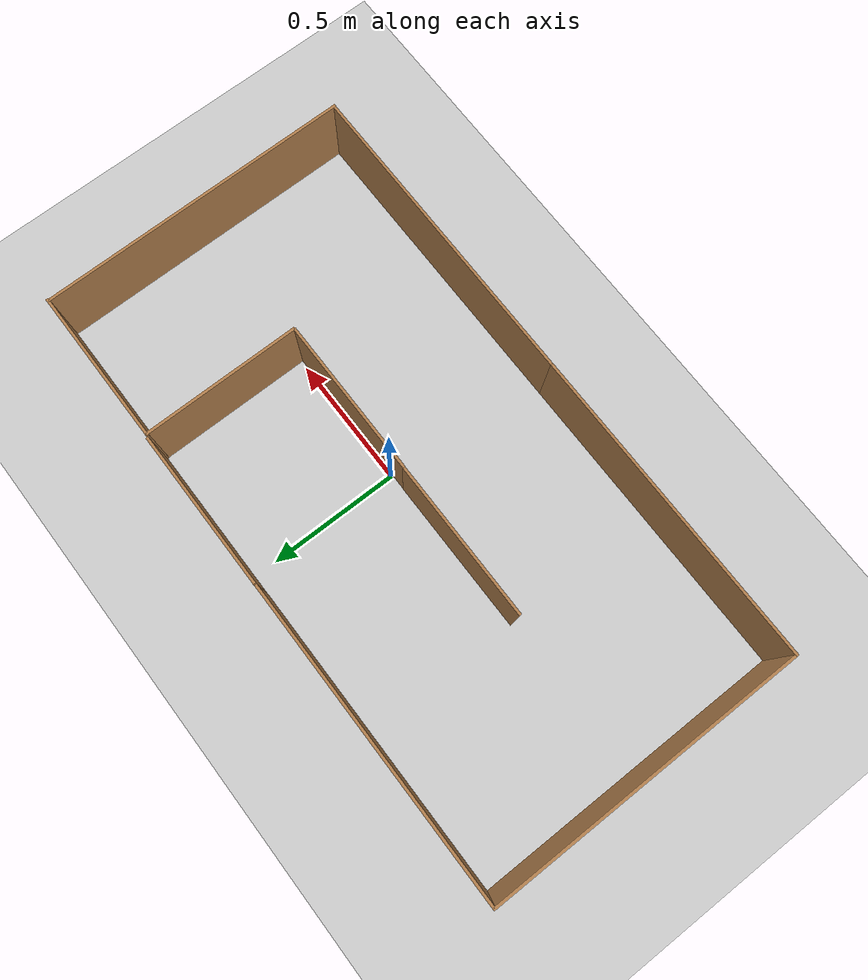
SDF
<sdf version="1.7">
 <world name="default">
  <light name="sun" type="directional">
   <pose>0 0 10 0 -0 0</pose>
   <diffuse>0.8 0.8 0.8 1</diffuse>
   <specular>0.2 0.2 0.2 1</specular>
   <attenuation>
    <range>1000</range>
    <constant>0.9</constant>
    <linear>0.01</linear>
    <quadratic>0.001</quadratic>
   </attenuation>
   <direction>-0.5 0.1 -0.9</direction>
   <spot><inner_angle>0</inner_angle><outer_angle>0</outer_angle><falloff>0</falloff></spot>
  </light>
  <model name="ground_plane">
   <pose>0 0 0 0 0 -1.56637</pose>
   <static>1</static>
   <link name="link">
    <collision name="collision">
     <geometry><plane><normal>0 0 1</normal><size>100 100</size></plane></geometry>
     <surface>
      <contact><collide_bitmask>65535</collide_bitmask></contact>
      <friction><ode><mu>100</mu><mu2>50</mu2></ode></friction>
     </surface>
    </collision>
    <visual name="visual">
     <cast_shadows>0</cast_shadows>
     <geometry><plane><normal>0 0 1</normal><size>100 100</size></plane></geometry>
     <material>
      <script><uri>file://media/materials/scripts/gazebo.material</uri><name>Gazebo/Grey</name></script>
     </material>
    </visual>
   </link>
  </model>
  <gravity>0 0 -9.8</gravity>
  <magnetic_field>6e-06 2.3e-05 -4.2e-05</magnetic_field>
  <atmosphere type="adiabatic"/>
  <physics type="ode">
   <max_step_size>0.001</max_step_size>
   <real_time_factor>1</real_time_factor>
   <real_time_update_rate>1000</real_time_update_rate>
  </physics>
  <scene><ambient>0.4 0.4 0.4 1</ambient><background>0.7 0.7 0.7 1</background><shadows>1</shadows></scene>
  <spherical_coordinates>
   <surface_model>EARTH_WGS84</surface_model>
   <latitude_deg>0</latitude_deg>
   <longitude_deg>0</longitude_deg>
   <elevation>0</elevation>
   <heading_deg>0</heading_deg>
  </spherical_coordinates>
  <model name="pared120">
   <pose>-0.68 0.6673 0 0 -0 0</pose>
   <link name="Wall_10">
    <collision name="Wall_10_Collision">
     <geometry><box><size>1.2 0.01 0.3</size></box></geometry>
     <pose>0 0 0.15 0 -0 0</pose>
    </collision>
    <visual name="Wall_10_Visual">
     <pose>0 0 0.15 0 -0 0</pose>
     <geometry><box><size>1.2 0.01 0.3</size></box></geometry>
     <material>
      <script><uri>file://media/materials/scripts/gazebo.material</uri><name>Gazebo/Wood</name></script>
      <ambient>1 1 1 1</ambient>
     </material>
     <meta><layer>0</layer></meta>
    </visual>
    <pose>0 -1.278 0 0 -0 0</pose>
   </link>
   <static>1</static>
  </model>
  <model name="pared120_0">
   <pose>-3e-06 1e-06 0 0 0 -1.56637</pose>
   <link name="Wall_10">
    <collision name="Wall_10_Collision">
     <geometry><box><size>1.2 0.01 0.3</size></box></geometry>
     <pose>0 0 0.15 0 -0 0</pose>
    </collision>
    <visual name="Wall_10_Visual">
     <pose>0 0 0.15 0 -0 0</pose>
     <geometry><box><size>1.2 0.01 0.3</size></box></geometry>
     <material>
      <script><uri>file://media/materials/scripts/gazebo.material</uri><name>Gazebo/Wood</name></script>
      <ambient>1 1 1 1</ambient>
     </material>
     <meta><layer>0</layer></meta>
    </visual>
    <pose>0 -1.278 0 0 -0 0</pose>
   </link>
   <static>1</static>
  </model>
  <model name="pared120_1">
   <pose>-0.68 1.8673 0 0 -0 0</pose>
   <link name="Wall_10">
    <collision name="Wall_10_Collision">
     <geometry><box><size>1.2 0.01 0.3</size></box></geometry>
     <pose>0 0 0.15 0 -0 0</pose>
    </collision>
    <visual name="Wall_10_Visual">
     <pose>0 0 0.15 0 -0 0</pose>
     <geometry><box><size>1.2 0.01 0.3</size></box></geometry>
     <material>
      <script><uri>file://media/materials/scripts/gazebo.material</uri><name>Gazebo/Wood</name></script>
      <ambient>1 1 1 1</ambient>
     </material>
     <meta><layer>0</layer></meta>
    </visual>
    <pose>0 -1.278 0 0 -0 0</pose>
   </link>
   <static>1</static>
  </model>
  <model name="pared120_2">
   <pose>0.52 0.6673 0 0 -0 0</pose>
   <link name="Wall_10">
    <collision name="Wall_10_Collision">
     <geometry><box><size>1.2 0.01 0.3</size></box></geometry>
     <pose>0 0 0.15 0 -0 0</pose>
    </collision>
    <visual name="Wall_10_Visual">
     <pose>0 0 0.15 0 -0 0</pose>
     <geometry><box><size>1.2 0.01 0.3</size></box></geometry>
     <material>
      <script><uri>file://media/materials/scripts/gazebo.material</uri><name>Gazebo/Wood</name></script>
      <ambient>1 1 1 1</ambient>
     </material>
     <meta><layer>0</layer></meta>
    </visual>
    <pose>0 -1.278 0 0 -0 0</pose>
   </link>
   <static>1</static>
  </model>
  <model name="pared120_3">
   <pose>2.39988 -0.010543 0 0 0 -1.56637</pose>
   <link name="Wall_10">
    <collision name="Wall_10_Collision">
     <geometry><box><size>1.2 0.01 0.3</size></box></geometry>
     <pose>0 0 0.15 0 -0 0</pose>
    </collision>
    <visual name="Wall_10_Visual">
     <pose>0 0 0.15 0 -0 0</pose>
     <geometry><box><size>1.2 0.01 0.3</size></box></geometry>
     <material>
      <script><uri>file://media/materials/scripts/gazebo.material</uri><name>Gazebo/Wood</name></script>
      <ambient>1 1 1 1</ambient>
     </material>
     <meta><layer>0</layer></meta>
    </visual>
    <pose>0 -1.278 0 0 -0 0</pose>
   </link>
   <static>1</static>
  </model>
  <model name="pared60_0">
   <pose>-0.839667 1.1544 0 0 -0 0</pose>
   <link name="Wall_14">
    <collision name="Wall_14_Collision">
     <geometry><box><size>0.6 0.01 0.3</size></box></geometry>
     <pose>0 0 0.15 0 -0 0</pose>
    </collision>
    <visual name="Wall_14_Visual">
     <pose>0 0 0.15 0 -0 0</pose>
     <geometry><box><size>0.6 0.01 0.3</size></box></geometry>
     <material>
      <script><uri>file://media/materials/scripts/gazebo.material</uri><name>Gazebo/Wood</name></script>
      <ambient>1 1 1 1</ambient>
     </material>
     <meta><layer>0</layer></meta>
    </visual>
    <pose>1.07729 -1.16568 0 0 -0 0</pose>
   </link>
   <static>1</static>
  </model>
  <model name="pared60">
   <pose>-0.25 1.75 0 0 -0 0</pose>
   <link name="Wall_14">
    <collision name="Wall_14_Collision">
     <geometry><box><size>0.6 0.01 0.3</size></box></geometry>
     <pose>0 0 0.15 0 -0 0</pose>
    </collision>
    <visual name="Wall_14_Visual">
     <pose>0 0 0.15 0 -0 0</pose>
     <geometry><box><size>0.6 0.01 0.3</size></box></geometry>
     <material>
      <script><uri>file://media/materials/scripts/gazebo.material</uri><name>Gazebo/Wood</name></script>
      <ambient>1 1 1 1</ambient>
     </material>
     <meta><layer>0</layer></meta>
    </visual>
    <pose>1.07729 -1.16568 0 0 -0 0</pose>
   </link>
   <static>1</static>
  </model>
  <model name="pared60_1">
   <pose>-0.852729 1.75555 0 0 -0 0</pose>
   <link name="Wall_14">
    <collision name="Wall_14_Collision">
     <geometry><box><size>0.6 0.01 0.3</size></box></geometry>
     <pose>0 0 0.15 0 -0 0</pose>
    </collision>
    <visual name="Wall_14_Visual">
     <pose>0 0 0.15 0 -0 0</pose>
     <geometry><box><size>0.6 0.01 0.3</size></box></geometry>
     <material>
      <script><uri>file://media/materials/scripts/gazebo.material</uri><name>Gazebo/Wood</name></script>
      <ambient>1 1 1 1</ambient>
     </material>
     <meta><layer>0</layer></meta>
    </visual>
    <pose>1.07729 -1.16568 0 0 -0 0</pose>
   </link>
   <static>1</static>
  </model>
  <model name="pared60_2">
   <pose>1.69779 1.36926 0 0 0 -1.56637</pose>
   <link name="Wall_14">
    <collision name="Wall_14_Collision">
     <geometry><box><size>0.6 0.01 0.3</size></box></geometry>
     <pose>0 0 0.15 0 -0 0</pose>
    </collision>
    <visual name="Wall_14_Visual">
     <pose>0 0 0.15 0 -0 0</pose>
     <geometry><box><size>0.6 0.01 0.3</size></box></geometry>
     <material>
      <script><uri>file://media/materials/scripts/gazebo.material</uri><name>Gazebo/Wood</name></script>
      <ambient>1 1 1 1</ambient>
     </material>
     <meta><layer>0</layer></meta>
    </visual>
    <pose>1.07729 -1.16568 0 0 -0 0</pose>
   </link>
   <static>1</static>
  </model>
  <model name="pared60_3">
   <pose>-1.43827 1.15548 0 0 -0 0</pose>
   <link name="Wall_14">
    <collision name="Wall_14_Collision">
     <geometry><box><size>0.6 0.01 0.3</size></box></geometry>
     <pose>0 0 0.15 0 -0 0</pose>
    </collision>
    <visual name="Wall_14_Visual">
     <pose>0 0 0.15 0 -0 0</pose>
     <geometry><box><size>0.6 0.01 0.3</size></box></geometry>
     <material>
      <script><uri>file://media/materials/scripts/gazebo.material</uri><name>Gazebo/Wood</name></script>
      <ambient>1 1 1 1</ambient>
     </material>
     <meta><layer>0</layer></meta>
    </visual>
    <pose>1.07729 -1.16568 0 0 -0 0</pose>
   </link>
   <static>1</static>
  </model>
 </world>
</sdf>
